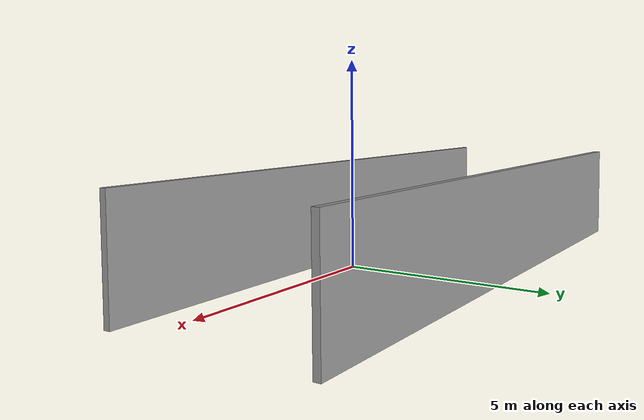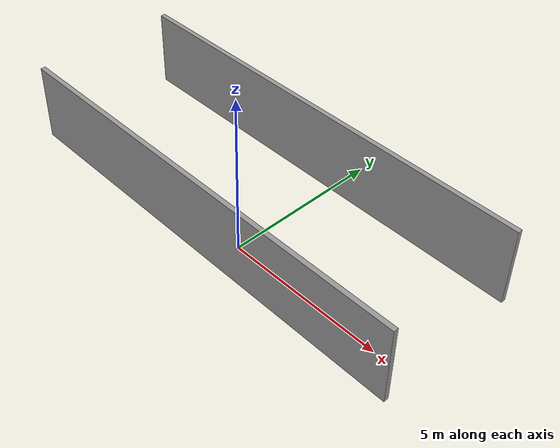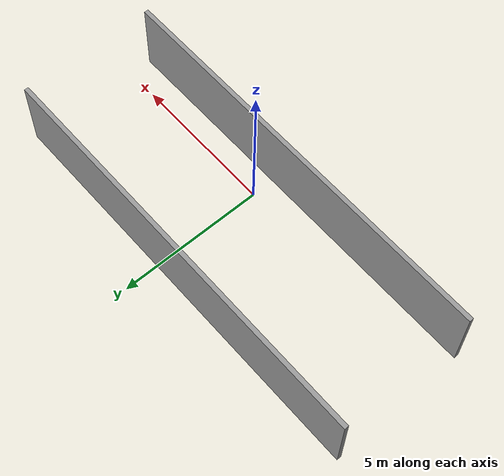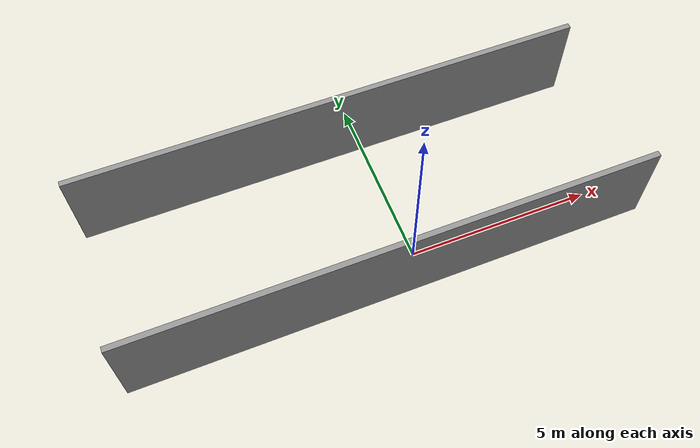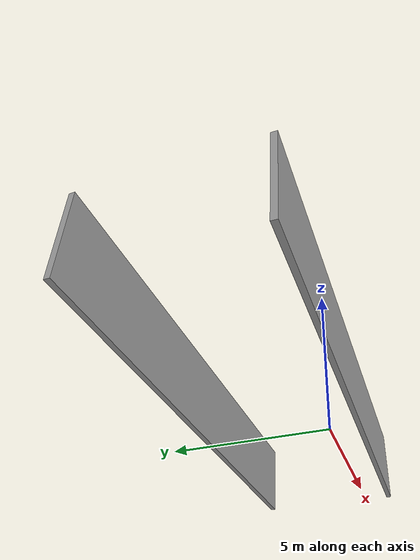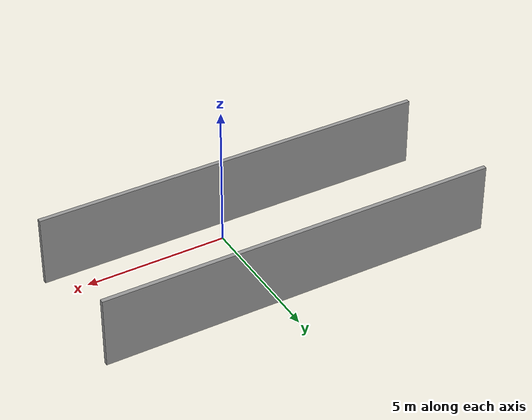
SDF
<?xml version='1.0'?>
<sdf version='1.6'>
  <model name='model_corridor_1'>
    <pose frame=''>-0.850433 1.44714 0 0 -0 0</pose>
    <link name='Wall_10'>
      <collision name='Wall_10_Collision'>
        <geometry>
          <box>
            <size>14 0.15 2.5</size>
          </box>
        </geometry>
        <pose frame=''>0 0 1.25 0 -0 0</pose>
      </collision>
      <visual name='Wall_10_Visual'>
        <pose frame=''>0 0 1.25 0 -0 0</pose>
        <geometry>
          <box>
            <size>14 0.15 2.5</size>
          </box>
        </geometry>
        <material>
          <script>
            <uri>file://media/materials/scripts/gazebo.material</uri>
            <name>Gazebo/Grey</name>
          </script>
          <ambient>1 1 1 1</ambient>
        </material>
        <meta>
          <layer>0</layer>
        </meta>
      </visual>
      <pose frame=''>-0 2.3 0 0 -0 0</pose>
    </link>
    <link name='Wall_18'>
      <collision name='Wall_18_Collision'>
        <geometry>
          <box>
            <size>14 0.15 2.5</size>
          </box>
        </geometry>
        <pose frame=''>0 0 1.25 0 -0 0</pose>
      </collision>
      <visual name='Wall_18_Visual'>
        <pose frame=''>0 0 1.25 0 -0 0</pose>
        <geometry>
          <box>
            <size>14 0.15 2.5</size>
          </box>
        </geometry>
        <material>
          <script>
            <uri>file://media/materials/scripts/gazebo.material</uri>
            <name>Gazebo/Grey</name>
          </script>
          <ambient>1 1 1 1</ambient>
        </material>
        <meta>
          <layer>0</layer>
        </meta>
      </visual>
      <pose frame=''>-0 -2.3 0 0 -0 3.14159</pose>
    </link>
    <static>1</static>
  </model>
</sdf>
